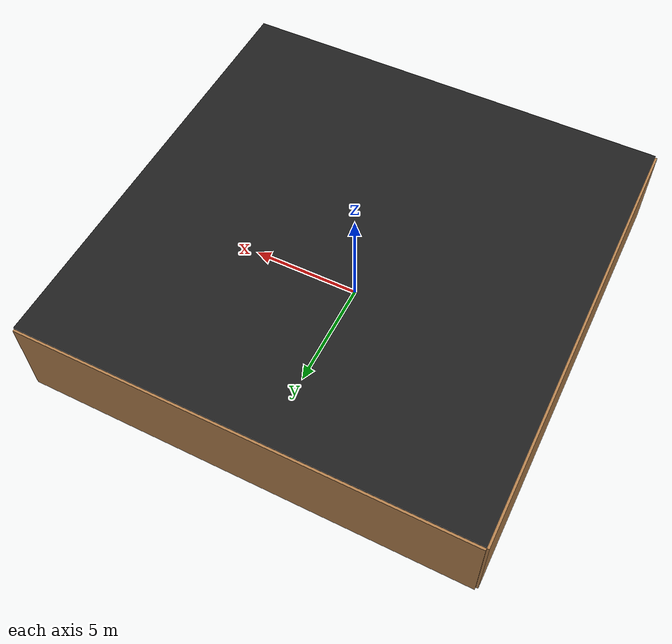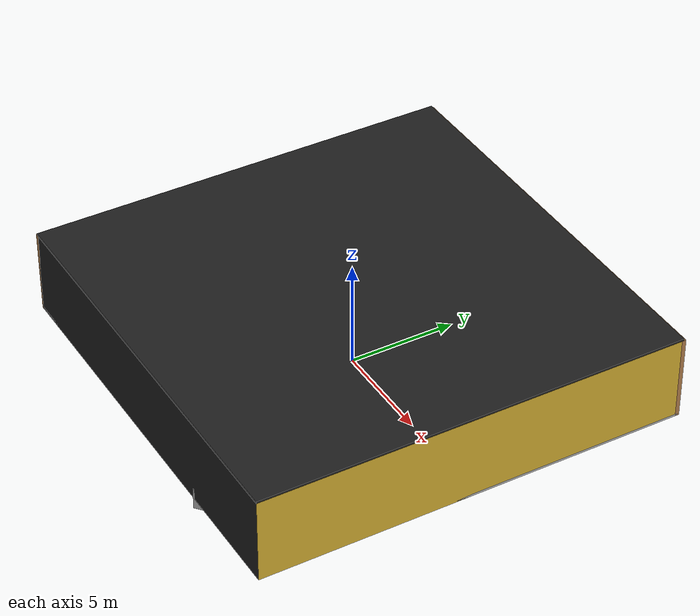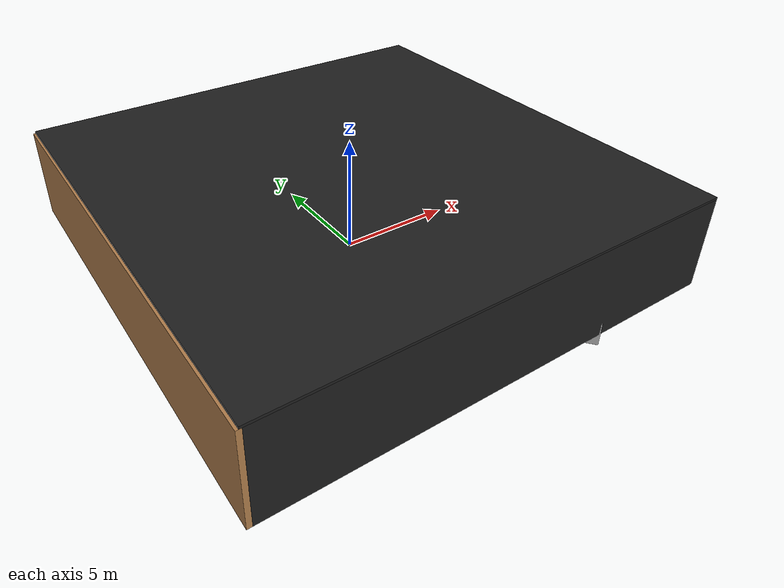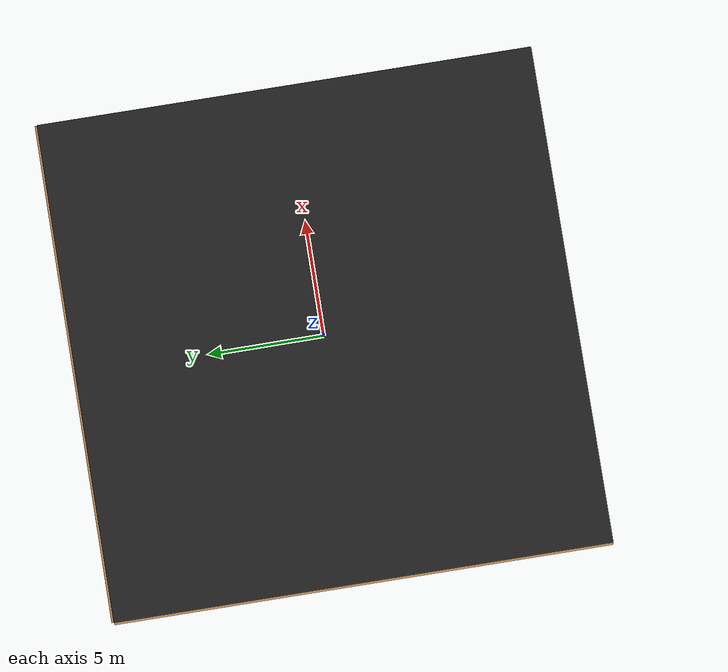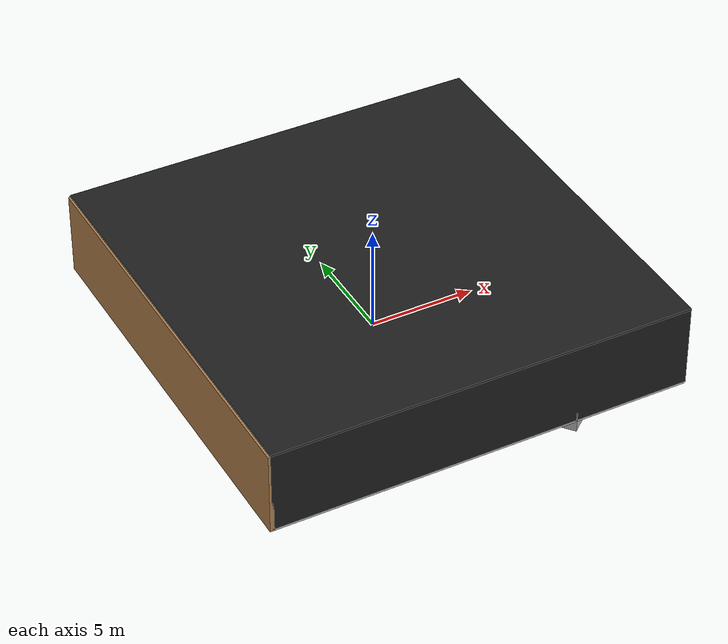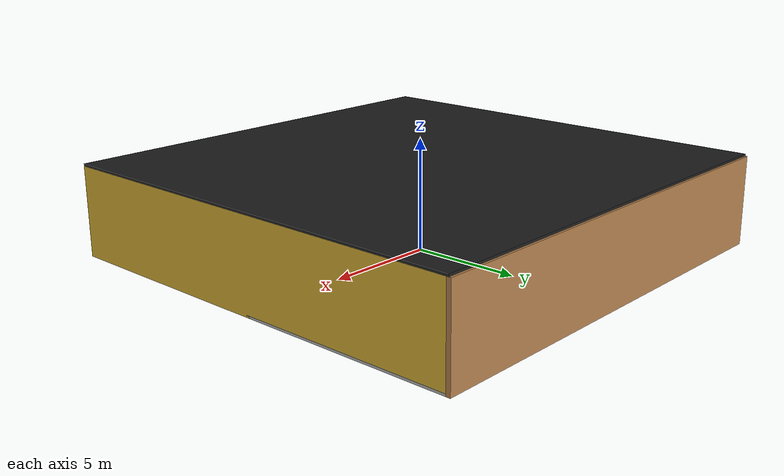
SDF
<sdf version="1.4">
 <world name="default">
  <physics type="ode">
   <max_step_size>0.001</max_step_size>
   <real_time_factor>1</real_time_factor>
   <real_time_update_rate>1000</real_time_update_rate>
   <gravity>0 0 -9.8</gravity>
  </physics>
  <scene><ambient>0.4 0.4 0.4 1</ambient><background>0.7 0.7 0.7 1</background><shadows>1</shadows></scene>
  <model name="Surrounding">
   <static>1</static>
   <link name="Ceiling">
    <collision name="Ceiling_Collision"><geometry><box><size>20 20 0.1</size></box></geometry></collision>
    <visual name="Ceiling_Visual">
     <geometry><box><size>20 20 0.1</size></box></geometry>
     <material>
      <script><uri>file://media/materials/scripts/gazebo.material</uri><name>Gazebo/Black</name></script>
     </material>
    </visual>
    <pose>0 0 4.05 0 0 0</pose>
   </link>
   <link name="Wall_South">
    <collision name="Wall_South_Collision">
     <geometry><box><size>20 0 4</size></box></geometry>
     <pose>0 0 2 0 -0 0</pose>
    </collision>
    <visual name="Wall_South_Visual">
     <pose>0 0 2 0 -0 0</pose>
     <geometry><box><size>20 0 4</size></box></geometry>
     <material>
      <script><uri>file://media/materials/scripts/gazebo.material</uri><name>Gazebo/FlatBlack</name></script>
     </material>
    </visual>
    <velocity_decay><linear>0</linear><angular>0</angular></velocity_decay>
    <pose>0 -10 0 0 -0 0</pose>
   </link>
   <link name="Wall_East">
    <collision name="Wall_21_Collision">
     <geometry><box><size>20 0 4</size></box></geometry>
     <pose>0 0 2 0 -0 0</pose>
    </collision>
    <visual name="Wall_21_Visual">
     <pose>0 0 2 0 -0 0</pose>
     <geometry><box><size>20 0 4</size></box></geometry>
     <material>
      <script><uri>file://media/materials/scripts/gazebo.material</uri><name>Gazebo/Gold</name></script>
     </material>
    </visual>
    <velocity_decay><linear>0</linear><angular>0</angular></velocity_decay>
    <pose>10 0 0 0 -0 1.5708</pose>
   </link>
   <link name="Wall_North">
    <collision name="Wall_22_Collision">
     <geometry><box><size>20 0.2 4</size></box></geometry>
     <pose>0 0 2 0 -0 0</pose>
    </collision>
    <visual name="Wall_22_Visual">
     <pose>0 0 2 0 -0 0</pose>
     <geometry><box><size>20 0.2 4</size></box></geometry>
     <material>
      <script><uri>file://media/materials/scripts/gazebo.material</uri><name>Gazebo/WoodPallet</name></script>
     </material>
    </visual>
    <velocity_decay><linear>0</linear><angular>0</angular></velocity_decay>
    <pose>0 10 0 0 -0 0</pose>
   </link>
   <link name="Wall_West">
    <collision name="Wall_23_Collision">
     <geometry><box><size>20 0.2 4</size></box></geometry>
     <pose>0 0 2 0 -0 0</pose>
    </collision>
    <visual name="Wall_23_Visual">
     <pose>0 0 2 0 -0 0</pose>
     <geometry><box><size>20 0.2 4</size></box></geometry>
     <material>
      <script><uri>file://media/materials/scripts/gazebo.material</uri><name>Gazebo/WoodFloor</name></script>
     </material>
    </visual>
    <velocity_decay><linear>0</linear><angular>0</angular></velocity_decay>
    <pose>-10 0 0 0 0 -1.5708</pose>
   </link>
   <link name="Ground_link">
    <collision name="collision">
     <pose>0 0 .05 0 -0 0</pose>
     <geometry><box><size>20 20 0.1</size></box></geometry>
    </collision>
    <visual name="visual">
     <pose>0 0 .05 0 -0 0</pose>
     <geometry><box><size>20 20 0.1</size></box></geometry>
     <material>
      <script><uri>file://media/materials/scripts/gazebo.material</uri><name>Gazebo/CloudySky</name></script>
     </material>
    </visual>
   </link>
   <static>1</static>
  </model>
  <spherical_coordinates>
   <surface_model>EARTH_WGS84</surface_model>
   <latitude_deg>0</latitude_deg>
   <longitude_deg>0</longitude_deg>
   <elevation>0</elevation>
   <heading_deg>0</heading_deg>
  </spherical_coordinates>
  <light name="lightball_0" type="diffuse">
   <diffuse>0.8 0.8 0.8 1</diffuse>
   <specular>0.2 0.2 0.2 1</specular>
   <attenuation>
    <range>100</range>
    <constant>0.7</constant>
    <linear>0.01</linear>
    <quadratic>0.001</quadratic>
   </attenuation>
   <direction>-0.5 0.1 -0.9</direction>
   <pose>-0.64521440568 5.67480886819 2.27107313154 0 0 0</pose>
  </light>
  <light name="lightball_1" type="diffuse">
   <diffuse>0.8 0.8 0.8 1</diffuse>
   <specular>0.2 0.2 0.2 1</specular>
   <attenuation>
    <range>100</range>
    <constant>0.7</constant>
    <linear>0.01</linear>
    <quadratic>0.001</quadratic>
   </attenuation>
   <direction>-0.5 0.1 -0.9</direction>
   <pose>4.29715779206 5.87633210402 3.81149363476 0 0 0</pose>
  </light>
  <light name="lightball_2" type="diffuse">
   <diffuse>0.8 0.8 0.8 1</diffuse>
   <specular>0.2 0.2 0.2 1</specular>
   <attenuation>
    <range>100</range>
    <constant>0.7</constant>
    <linear>0.01</linear>
    <quadratic>0.001</quadratic>
   </attenuation>
   <direction>-0.5 0.1 -0.9</direction>
   <pose>7.83418264181 -8.31317572749 2.94053504221 0 0 0</pose>
  </light>
  <light name="lightball_3" type="diffuse">
   <diffuse>0.8 0.8 0.8 1</diffuse>
   <specular>0.2 0.2 0.2 1</specular>
   <attenuation>
    <range>100</range>
    <constant>0.7</constant>
    <linear>0.01</linear>
    <quadratic>0.001</quadratic>
   </attenuation>
   <direction>-0.5 0.1 -0.9</direction>
   <pose>-5.89604039534 2.73982479297 2.22299324195 0 0 0</pose>
  </light>
  <light name="lightball_4" type="diffuse">
   <diffuse>0.8 0.8 0.8 1</diffuse>
   <specular>0.2 0.2 0.2 1</specular>
   <attenuation>
    <range>100</range>
    <constant>0.7</constant>
    <linear>0.01</linear>
    <quadratic>0.001</quadratic>
   </attenuation>
   <direction>-0.5 0.1 -0.9</direction>
   <pose>6.74610704119 3.3092331006 1.53918594827 0 0 0</pose>
  </light>
  <light name="lightball_5" type="diffuse">
   <diffuse>0.8 0.8 0.8 1</diffuse>
   <specular>0.2 0.2 0.2 1</specular>
   <attenuation>
    <range>100</range>
    <constant>0.7</constant>
    <linear>0.01</linear>
    <quadratic>0.001</quadratic>
   </attenuation>
   <direction>-0.5 0.1 -0.9</direction>
   <pose>3.03591595412 1.43212199379 0.745542954367 0 0 0</pose>
  </light>
  <light name="lightball_6" type="diffuse">
   <diffuse>0.8 0.8 0.8 1</diffuse>
   <specular>0.2 0.2 0.2 1</specular>
   <attenuation>
    <range>100</range>
    <constant>0.7</constant>
    <linear>0.01</linear>
    <quadratic>0.001</quadratic>
   </attenuation>
   <direction>-0.5 0.1 -0.9</direction>
   <pose>7.13999370834 1.33679386081 0.525329527761 0 0 0</pose>
  </light>
  <light name="lightball_7" type="diffuse">
   <diffuse>0.8 0.8 0.8 1</diffuse>
   <specular>0.2 0.2 0.2 1</specular>
   <attenuation>
    <range>100</range>
    <constant>0.7</constant>
    <linear>0.01</linear>
    <quadratic>0.001</quadratic>
   </attenuation>
   <direction>-0.5 0.1 -0.9</direction>
   <pose>-2.06000551984 -9.24432548239 0.519575966467 0 0 0</pose>
  </light>
  <light name="lightball_8" type="diffuse">
   <diffuse>0.8 0.8 0.8 1</diffuse>
   <specular>0.2 0.2 0.2 1</specular>
   <attenuation>
    <range>100</range>
    <constant>0.7</constant>
    <linear>0.01</linear>
    <quadratic>0.001</quadratic>
   </attenuation>
   <direction>-0.5 0.1 -0.9</direction>
   <pose>3.91340580111 6.54687118949 2.57076653505 0 0 0</pose>
  </light>
  <light name="lightball_9" type="diffuse">
   <diffuse>0.8 0.8 0.8 1</diffuse>
   <specular>0.2 0.2 0.2 1</specular>
   <attenuation>
    <range>100</range>
    <constant>0.7</constant>
    <linear>0.01</linear>
    <quadratic>0.001</quadratic>
   </attenuation>
   <direction>-0.5 0.1 -0.9</direction>
   <pose>4.59943383775 -8.46042109087 2.90391839192 0 0 0</pose>
  </light>
  <light name="lightball_10" type="diffuse">
   <diffuse>0.8 0.8 0.8 1</diffuse>
   <specular>0.2 0.2 0.2 1</specular>
   <attenuation>
    <range>100</range>
    <constant>0.7</constant>
    <linear>0.01</linear>
    <quadratic>0.001</quadratic>
   </attenuation>
   <direction>-0.5 0.1 -0.9</direction>
   <pose>0.913584785045 1.07269246991 2.87961153483 0 0 0</pose>
  </light>
  <light name="lightball_11" type="diffuse">
   <diffuse>0.8 0.8 0.8 1</diffuse>
   <specular>0.2 0.2 0.2 1</specular>
   <attenuation>
    <range>100</range>
    <constant>0.7</constant>
    <linear>0.01</linear>
    <quadratic>0.001</quadratic>
   </attenuation>
   <direction>-0.5 0.1 -0.9</direction>
   <pose>-3.4402830751 5.56579032589 0.82515233021 0 0 0</pose>
  </light>
  <light name="lightball_12" type="diffuse">
   <diffuse>0.8 0.8 0.8 1</diffuse>
   <specular>0.2 0.2 0.2 1</specular>
   <attenuation>
    <range>100</range>
    <constant>0.7</constant>
    <linear>0.01</linear>
    <quadratic>0.001</quadratic>
   </attenuation>
   <direction>-0.5 0.1 -0.9</direction>
   <pose>8.68991571262 0.196151064337 3.67211022826 0 0 0</pose>
  </light>
  <include><uri>model://cabinet</uri><pose>-6.4382728592 6.30314442974 0 0 0 1.95631866687</pose></include>
  <include>
   <uri>model://construction_cone</uri>
   <pose>-4.52016598118 2.64331924102 0 0 0 1.27984426604</pose>
  </include>
  <include>
   <uri>model://construction_cone</uri>
   <pose>-2.26665802799 4.90064547315 0 0 0 1.93169956585</pose>
  </include>
  <include>
   <uri>model://robocup_3Dsim_goal</uri>
   <pose>0.838085514429 0.898389587122 0 0 0 1.13104483377</pose>
  </include>
  <include>
   <uri>model://textured_shapes</uri>
   <pose>3.5972119768 -8.18228518622 0 0 0 0.694302684465</pose>
  </include>
  <include>
   <uri>model://textured_shapes</uri>
   <pose>8.01413876001 5.16671593603 0 0 0 0.305834269293</pose>
  </include>
 </world>
</sdf>

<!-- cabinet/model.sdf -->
<sdf version="1.5">
  <model name="cabinet">
    <static>true</static>
    <link name="cabinet_bottom_plate">
      <inertial>
        <pose>0 0 -1 0 0 0</pose>
        <inertia>
          <ixx>2.050000</ixx>
          <ixy>0</ixy>
          <ixz>0</ixz>
          <iyy>2.050000</iyy>
          <iyz>0</iyz>
          <izz>2.050000</izz>
        </inertia>
        <mass>25.000000</mass>
      </inertial>
      <collision name="cabinet_bottom_plate_geom">
        <pose>0 0 0.010000 0 0 0</pose>
        <geometry>
          <box>
            <size>0.450000 0.450000 0.020000</size>
          </box>
        </geometry>
      </collision>
      <visual name="cabinet_bottom_plate_geom_visual">
        <pose>0 0 0.010000 0 0 0</pose>
        <geometry>
          <box>
            <size>0.450000 0.450000 0.020000</size>
          </box>
        </geometry>
        <material>
          <script>
            <uri>model://media/materials/scripts/gazebo.material</uri>
            <name>Gazebo/Wood</name>
          </script>
        </material>
      </visual>
      <collision name="cabinet_bottom_plate_geom_cabinet_back_plate">
        <pose>0.235000 0 0.510000 0 0 0</pose>
        <geometry>
          <box>
            <size>0.020000 0.450000 1.020000</size>
          </box>
        </geometry>
      </collision>
      <visual name="cabinet_bottom_plate_geom_cabinet_back_plate_visual">
        <pose>0.235000 0 0.510000 0 0 0</pose>
        <geometry>
          <box>
            <size>0.020000 0.450000 1.020000</size>
          </box>
        </geometry>
        <material>
          <script>
            <uri>model://media/materials/scripts/gazebo.material</uri>
            <name>Gazebo/Wood</name>
          </script>
        </material>
      </visual>
      <collision name="cabinet_bottom_plate_geom_cabinet_left_plate">
        <pose>0 0.235000 0.510000 0 0 0</pose>
        <geometry>
          <box>
            <size>0.450000 0.020000 1.020000</size>
          </box>
        </geometry>
      </collision>
      <visual name="cabinet_bottom_plate_geom_cabinet_left_plate_visual">
        <pose>0 0.235000 0.510000 0 0 0</pose>
        <geometry>
          <box>
            <size>0.450000 0.020000 1.020000</size>
          </box>
        </geometry>
        <material>
          <script>
            <uri>model://media/materials/scripts/gazebo.material</uri>
            <name>Gazebo/Wood</name>
          </script>
        </material>
      </visual>
      <collision name="cabinet_bottom_plate_geom_cabinet_middle_plate">
        <pose>0 0 0.510000 0 0 0</pose>
        <geometry>
          <box>
            <size>0.450000 0.450000 0.020000</size>
          </box>
        </geometry>
      </collision>
      <visual name="cabinet_bottom_plate_geom_cabinet_middle_plate_visual">
        <pose>0 0 0.510000 0 0 0</pose>
        <geometry>
          <box>
            <size>0.450000 0.450000 0.020000</size>
          </box>
        </geometry>
        <material>
          <script>
            <uri>model://media/materials/scripts/gazebo.material</uri>
            <name>Gazebo/Wood</name>
          </script>
        </material>
      </visual>
      <collision name="cabinet_bottom_plate_geom_cabinet_right_plate">
        <pose>0 -0.235000 0.510000 0 0 0</pose>
        <geometry>
          <box>
            <size>0.450000 0.020000 1.020000</size>
          </box>
        </geometry>
      </collision>
      <visual name="cabinet_bottom_plate_geom_cabinet_right_plate_visual">
        <pose>0 -0.235000 0.510000 0 0 0</pose>
        <geometry>
          <box>
            <size>0.450000 0.020000 1.020000</size>
          </box>
        </geometry>
        <material>
          <script>
            <uri>model://media/materials/scripts/gazebo.material</uri>
            <name>Gazebo/Wood</name>
          </script>
        </material>
      </visual>
      <collision name="cabinet_bottom_plate_geom_cabinet_top_plate">
        <pose>0 0 1.010000 0 0 0</pose>
        <geometry>
          <box>
            <size>0.450000 0.450000 0.020000</size>
          </box>
        </geometry>
      </collision>
      <visual name="cabinet_bottom_plate_geom_cabinet_top_plate_visual">
        <pose>0 0 1.010000 0 0 0</pose>
        <geometry>
          <box>
            <size>0.450000 0.450000 0.020000</size>
          </box>
        </geometry>
        <material>
          <script>
            <uri>model://media/materials/scripts/gazebo.material</uri>
            <name>Gazebo/Wood</name>
          </script>
        </material>
      </visual>
    </link>
  </model>
</sdf>

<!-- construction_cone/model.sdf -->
<sdf version="1.5">
  <model name="Construction Cone">
    <link name="link">
      <collision name="collision">
        <geometry>
          <mesh>
            <scale>10 10 10</scale>
            <uri>file://isr-testbed/construction_cone/meshes/construction_cone.dae</uri>
          </mesh>
        </geometry>
      </collision>
      <visual name="visual">
        <geometry>
          <mesh>
            <scale>10 10 10</scale>
            <uri>file://isr-testbed/construction_cone/meshes/construction_cone.dae</uri>
          </mesh>
        </geometry>
      </visual>
    </link>
  </model>
</sdf>

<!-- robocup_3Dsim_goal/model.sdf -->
<sdf version="1.5">
  <model name="robocup_3d_goal">
    <static>true</static>
    <link name="left_post">
      <pose>0 1.05 0.45 0 0 0</pose>
      <collision name="collision">
        <geometry>
          <cylinder>
            <radius>0.05</radius>
            <length>0.9</length>
          </cylinder>
        </geometry>
      </collision>
      <visual name="visual">
        <geometry>
          <cylinder>
            <radius>0.05</radius>
            <length>0.9</length>
          </cylinder>
        </geometry>
        <material>
          <script>
            <uri>file://media/materials/scripts/gazebo.material</uri>
            <name>Gazebo/ZincYellow</name>
          </script>
        </material>
      </visual>
    </link>
    <link name="left_support_horiz_lower">
      <pose>0.30 1.05 0.01 0 0 0</pose>
      <collision name="collision">
        <geometry>
          <box>
            <size>0.50 0.02 0.02</size>
          </box>
        </geometry>
      </collision>
      <visual name="visual">
        <geometry>
          <box>
            <size>0.50 0.02 0.02</size>
          </box>
        </geometry>
        <material>
          <script>
            <uri>file://media/materials/scripts/gazebo.material</uri>
            <name>Gazebo/White</name>
          </script>
        </material>
      </visual>
    </link>
    <link name="left_support_horiz_upper">
      <pose>0.30 1.05 0.79 0 0 0</pose>
      <collision name="collision">
        <geometry>
          <box>
            <size>0.50 0.02 0.02</size>
          </box>
        </geometry>
      </collision>
      <visual name="visual">
        <geometry>
          <box>
            <size>0.50 0.02 0.02</size>
          </box>
        </geometry>
        <material>
          <script>
            <uri>file://media/materials/scripts/gazebo.material</uri>
            <name>Gazebo/White</name>
          </script>
        </material>
      </visual>
    </link>
    <link name="left_support_vertical">
      <pose>0.56 1.05 0.4 0 1.5708 0</pose>
      <collision name="collision">
        <geometry>
          <box>
            <size>0.80 0.02 0.02</size>
          </box>
        </geometry>
      </collision>
      <visual name="visual">
        <geometry>
          <box>
            <size>0.80 0.02 0.02</size>
          </box>
        </geometry>
        <material>
          <script>
            <uri>file://media/materials/scripts/gazebo.material</uri>
            <name>Gazebo/White</name>
          </script>
        </material>
      </visual>
    </link>
    <link name="right_support_horiz_lower">
      <pose>0.30 -1.05 0.01 0 0 0</pose>
      <collision name="collision">
        <geometry>
          <box>
            <size>0.50 0.02 0.02</size>
          </box>
        </geometry>
      </collision>
      <visual name="visual">
        <geometry>
          <box>
            <size>0.50 0.02 0.02</size>
          </box>
        </geometry>
        <material>
          <script>
            <uri>file://media/materials/scripts/gazebo.material</uri>
            <name>Gazebo/White</name>
          </script>
        </material>
      </visual>
    </link>
    <link name="right_support_horiz_upper">
      <pose>0.30 -1.05 0.79 0 0 0</pose>
      <collision name="collision">
        <geometry>
          <box>
            <size>0.50 0.02 0.02</size>
          </box>
        </geometry>
      </collision>
      <visual name="visual">
        <geometry>
          <box>
            <size>0.50 0.02 0.02</size>
          </box>
        </geometry>
        <material>
          <script>
            <uri>file://media/materials/scripts/gazebo.material</uri>
            <name>Gazebo/White</name>
          </script>
        </material>
      </visual>
    </link>
    <link name="right_support_vertical">
      <pose>0.56 -1.05 0.4 0 1.5708 0</pose>
      <collision name="collision">
        <geometry>
          <box>
            <size>0.80 0.02 0.02</size>
          </box>
        </geometry>
      </collision>
      <visual name="visual">
        <geometry>
          <box>
            <size>0.80 0.02 0.02</size>
          </box>
        </geometry>
        <material>
          <script>
            <uri>file://media/materials/scripts/gazebo.material</uri>
            <name>Gazebo/White</name>
          </script>
        </material>
      </visual>
    </link>
    <link name="center_support_horiz_lower">
      <pose>0.56 0 0.01 0 1.5708 0</pose>
      <collision name="collision">
        <geometry>
          <box>
            <size>0.02 2.08 0.02</size>
          </box>
        </geometry>
      </collision>
      <visual name="visual">
        <geometry>
          <box>
            <size>0.02 2.08 0.02</size>
          </box>
        </geometry>
        <material>
          <script>
            <uri>file://media/materials/scripts/gazebo.material</uri>
            <name>Gazebo/White</name>
          </script>
        </material>
      </visual>
    </link>
    <link name="center_support_horiz_upper">
      <pose>0.56 0 0.79 0 1.5708 0</pose>
      <collision name="collision">
        <geometry>
          <box>
            <size>0.02 2.08 0.02</size>
          </box>
        </geometry>
      </collision>
      <visual name="visual">
        <geometry>
          <box>
            <size>0.02 2.08 0.02</size>
          </box>
        </geometry>
        <material>
          <script>
            <uri>file://media/materials/scripts/gazebo.material</uri>
            <name>Gazebo/White</name>
          </script>
        </material>
      </visual>
    </link>
    <link name="right_post">
      <pose>0 -1.05 0.45 0 0 0</pose>
      <collision name="collision">
        <geometry>
          <cylinder>
            <radius>0.05</radius>
            <length>0.9</length>
          </cylinder>
        </geometry>
      </collision>
      <visual name="visual">
        <geometry>
          <cylinder>
            <radius>0.05</radius>
            <length>0.9</length>
          </cylinder>
        </geometry>
        <material>
          <script>
            <uri>file://media/materials/scripts/gazebo.material</uri>
            <name>Gazebo/ZincYellow</name>
          </script>
        </material>
      </visual>
    </link>
    <link name="crossbar">
      <pose>0 0 0.85 1.57 1.57 0</pose>
      <collision name="collision">
        <geometry>
          <cylinder>
            <radius>0.05</radius>
            <length>2.0</length>
          </cylinder>
        </geometry>
      </collision>
      <visual name="visual">
        <geometry>
          <cylinder>
            <radius>0.05</radius>
            <length>2.0</length>
          </cylinder>
        </geometry>
        <material>
          <script>
            <uri>file://media/materials/scripts/gazebo.material</uri>
            <name>Gazebo/ZincYellow</name>
          </script>
        </material>
      </visual>
    </link>
    <link name="center_net">
      <pose>0.56 0 0.40 0 0 0</pose>
      <collision name="collision">
        <geometry>
          <box>
            <size>0.01 2.1 0.80</size>
          </box>
        </geometry>
      </collision>
      <visual name="visual">
        <geometry>
          <box>
            <size>0.01 2.1 0.80</size>
          </box>
        </geometry>
        <material>
          <script>
            <uri>model://../model_source/models/robocup09_spl_field/materials/scripts/</uri>
            <uri>model://../model_source/models/robocup09_spl_field/materials/textures/</uri>
            <name>RoboCup/Net</name>
          </script>
        </material>
      </visual>
    </link>
    <link name="left_net">
      <pose>0.30 1.05 0.40 0 0 0</pose>
      <collision name="collision">
        <geometry>
          <box>
            <size>0.50 0.01 0.76</size>
          </box>
        </geometry>
      </collision>
      <visual name="visual">
        <geometry>
          <box>
            <size>0.50 0.01 0.76</size>
          </box>
        </geometry>
        <material>
          <script>
            <uri>model://../model_source/models/robocup09_spl_field/materials/scripts/</uri>
            <uri>model://../model_source/models/robocup09_spl_field/materials/textures/</uri>
            <name>RoboCup/Net</name>
          </script>
        </material>
      </visual>
    </link>
    <link name="right_net">
      <pose>0.30 -1.05 0.40 0 0 0</pose>
      <collision name="collision">
        <geometry>
          <box>
            <size>0.50 0.01 0.76</size>
          </box>
        </geometry>
      </collision>
      <visual name="visual">
        <geometry>
          <box>
            <size>0.50 0.01 0.76</size>
          </box>
        </geometry>
        <material>
          <script>
            <uri>model://../model_source/models/robocup09_spl_field/materials/scripts/</uri>
            <uri>model://../model_source/models/robocup09_spl_field/materials/textures/</uri>
            <name>RoboCup/Net</name>
          </script>
        </material>
      </visual>
    </link>
  </model>
</sdf>

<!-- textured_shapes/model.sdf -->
<sdf version="1.6">
  <model name="textured_shapes">
    <pose>0 0 0.5 0 0 0</pose>
    <link name="box">
      <pose>0 -1.5 0 0 0 0</pose>
      <collision name="collision">
        <geometry>
          <box>
            <size>1 1 1</size>
          </box>
        </geometry>
      </collision>
      <visual name="visual">
        <geometry>
          <box>
            <size>1 1 1</size>
          </box>
        </geometry>
        <material>
          <script>
            <uri>model://../model_source/models/textured_shapes/materials/scripts</uri>
            <uri>model://../model_source/models/textured_shapes/materials/textures</uri>
            <name>TexturedShape/Squares</name>
          </script>
        </material>
      </visual>
    </link>
    <link name="sphere">
      <collision name="collision">
        <geometry>
          <sphere>
            <radius>0.5</radius>
          </sphere>
        </geometry>
      </collision>
      <visual name="visual">
        <geometry>
          <sphere>
            <radius>0.5</radius>
          </sphere>
        </geometry>
        <material>
          <script>
            <uri>model://../model_source/models/textured_shapes/materials/scripts</uri>
            <uri>model://../model_source/models/textured_shapes/materials/textures</uri>
            <name>TexturedShape/Squares</name>
          </script>
        </material>
      </visual>
    </link>
    <link name="cylinder">
      <pose>0 1.5 0 0 0 0</pose>
      <collision name="collision">
        <geometry>
          <cylinder>
            <radius>0.5</radius>
            <length>1</length>
          </cylinder>
        </geometry>
      </collision>
      <visual name="visual">
        <geometry>
          <cylinder>
            <radius>0.5</radius>
            <length>1</length>
          </cylinder>
        </geometry>
        <material>
          <script>
            <uri>model://../model_source/models/textured_shapes/materials/scripts</uri>
            <uri>model://../model_source/models/textured_shapes/materials/textures</uri>
            <name>TexturedShape/Squares</name>
          </script>
        </material>
      </visual>
    </link>
  </model>
</sdf>
